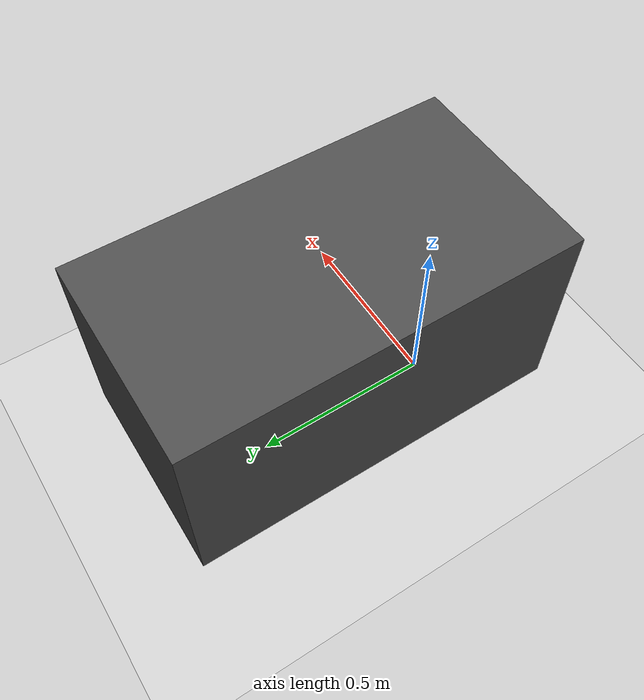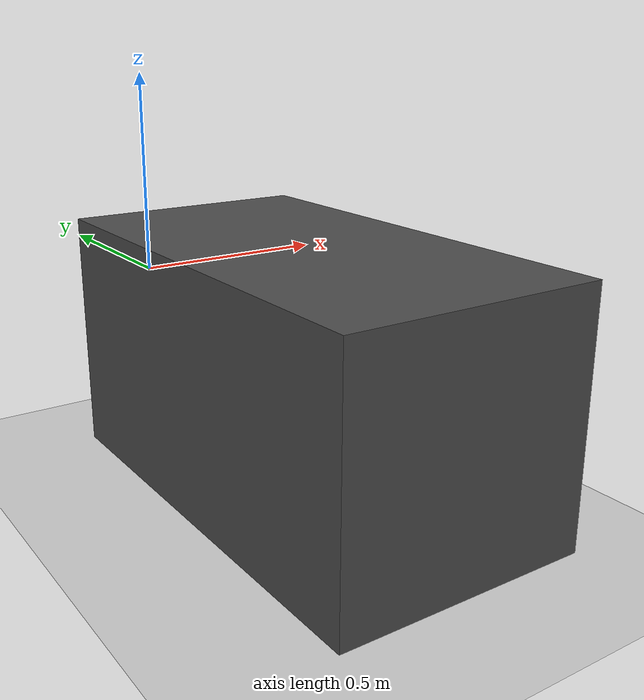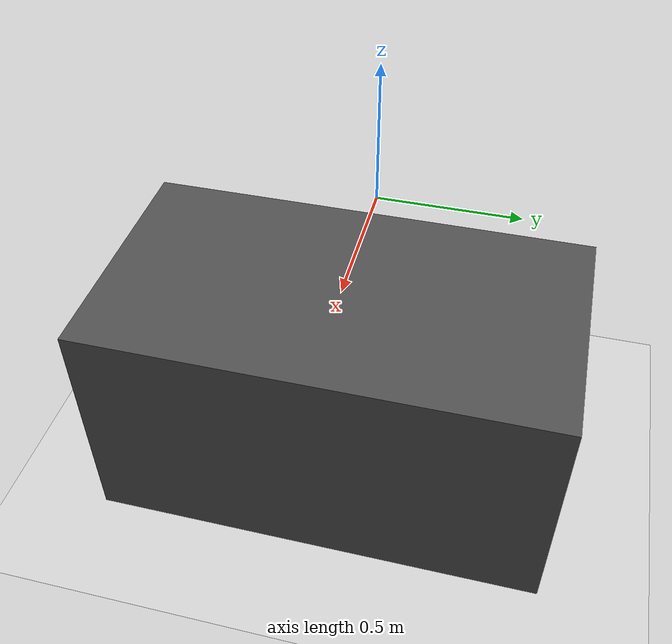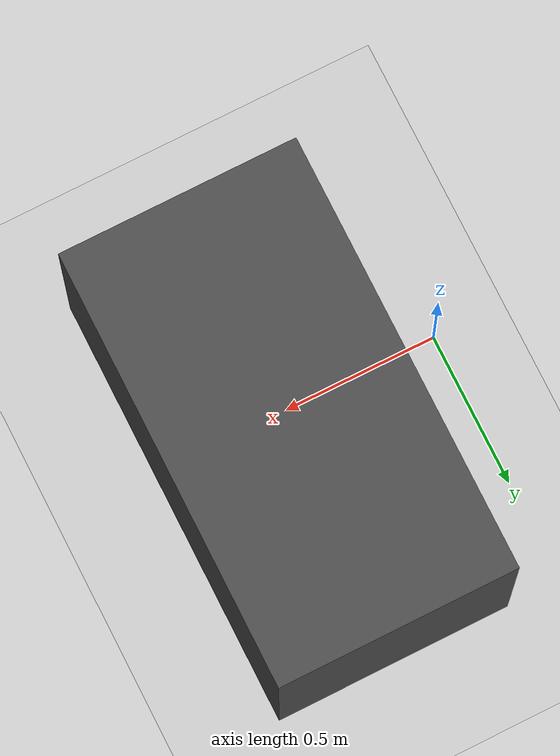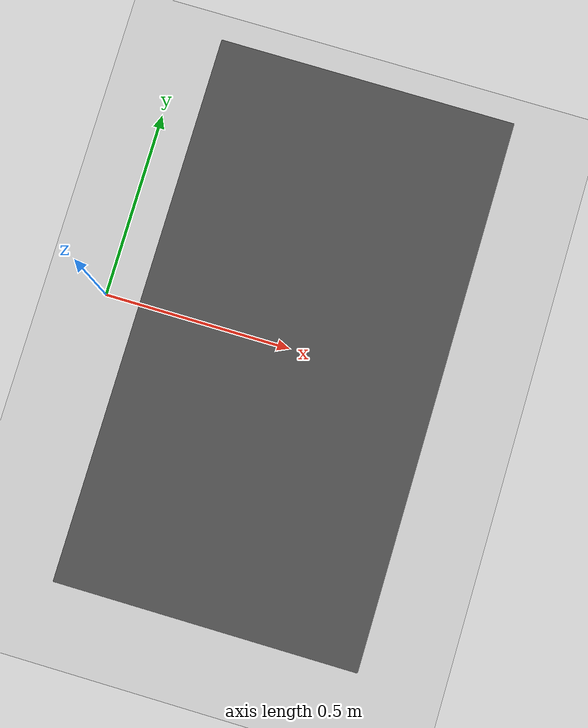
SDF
<?xml version="1.0" ?>
<sdf version="1.4">
  <world name="default">

    <include>
      <uri>model://sun</uri>
    </include>

    <model name="ground_plane">
    <pose>0 0 -0.787 0 0 0</pose>
      <static>true</static>
      <link name="link">
        <collision name="collision">
          <geometry>
            <plane>
              <normal>0 0 1</normal>
              <size>100 100</size>
            </plane>
          </geometry>
          <surface>
            <friction>
              <ode>
                <mu>100</mu>
                <mu2>50</mu2>
              </ode>
            </friction>
          </surface>
        </collision>
        <visual name="visual">
          <cast_shadows>false</cast_shadows>
          <geometry>
            <plane>
              <normal>0 0 1</normal>
              <size>100 100</size>
            </plane>
          </geometry>
          <material>
            <script>
              <uri>file://media/materials/scripts/gazebo.material</uri>
              <name>Gazebo/Grey</name>
            </script>
          </material>
        </visual>
      </link>
    </model>

    <model name="table">
      <pose>0.495 0 -0.3935 0 0 0</pose>
      <static>1</static>
      <link name="link">
        <collision name="collision">
          <geometry>
            <box>
              <size>0.81 1.49 0.787</size>
            </box>
          </geometry>
        </collision>
        <visual name="visual">
          <geometry>
            <box>
              <size>0.81 1.49 0.787</size>
            </box>
          </geometry>
          <material>
            <script>
              <name>Gazebo/DarkGrey</name>
              <uri>file://media/materials/scripts/gazebo.material</uri>
            </script>
            <shader type='pixel'/>
          </material>
        </visual>
      </link>
    </model>

  </world>
</sdf>
